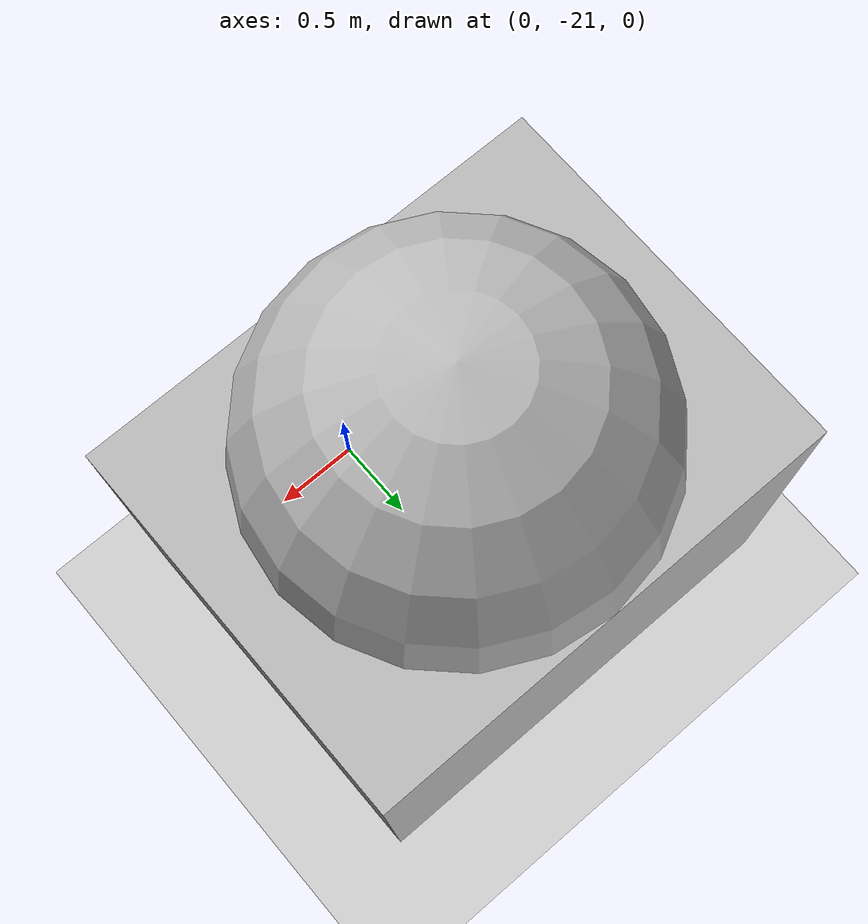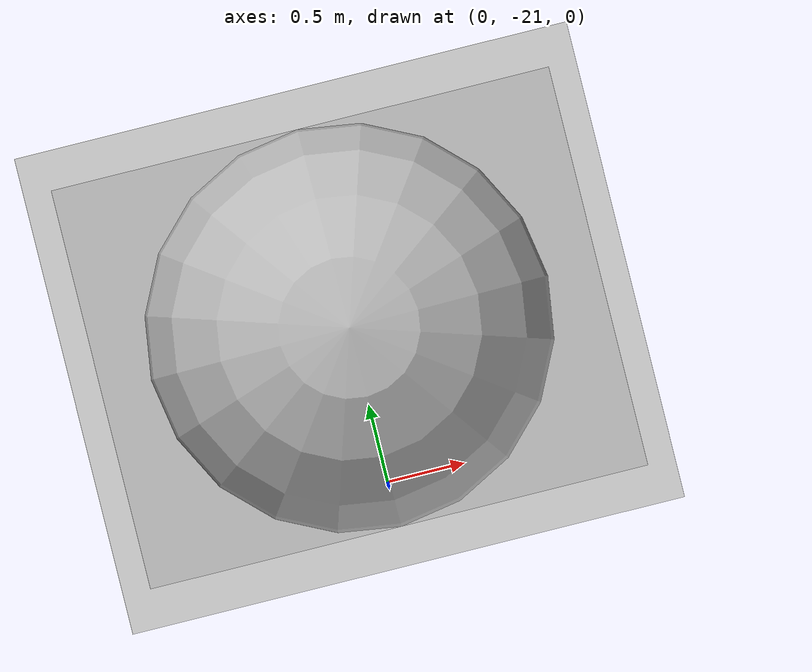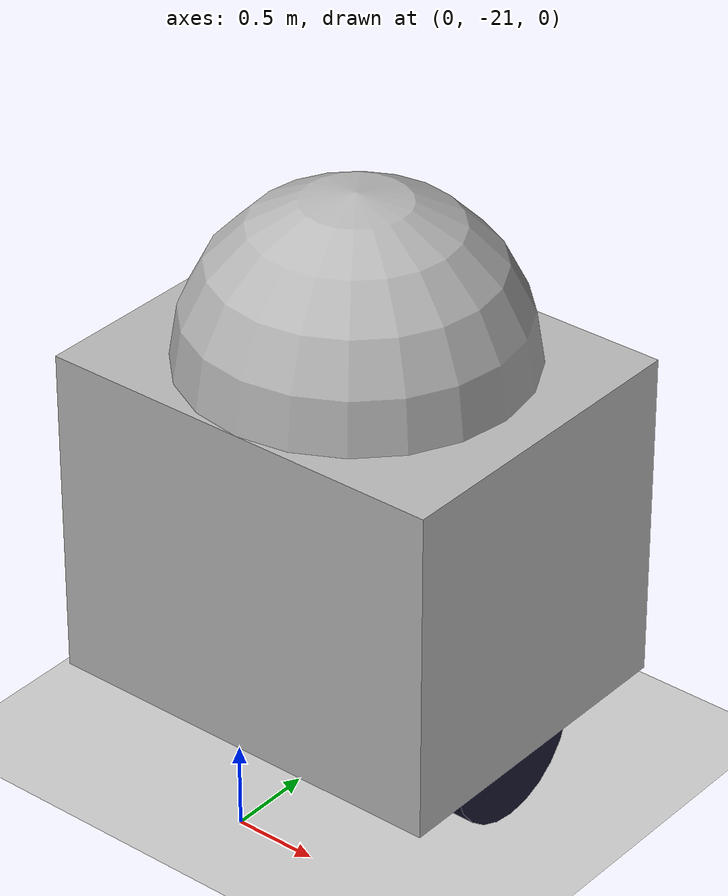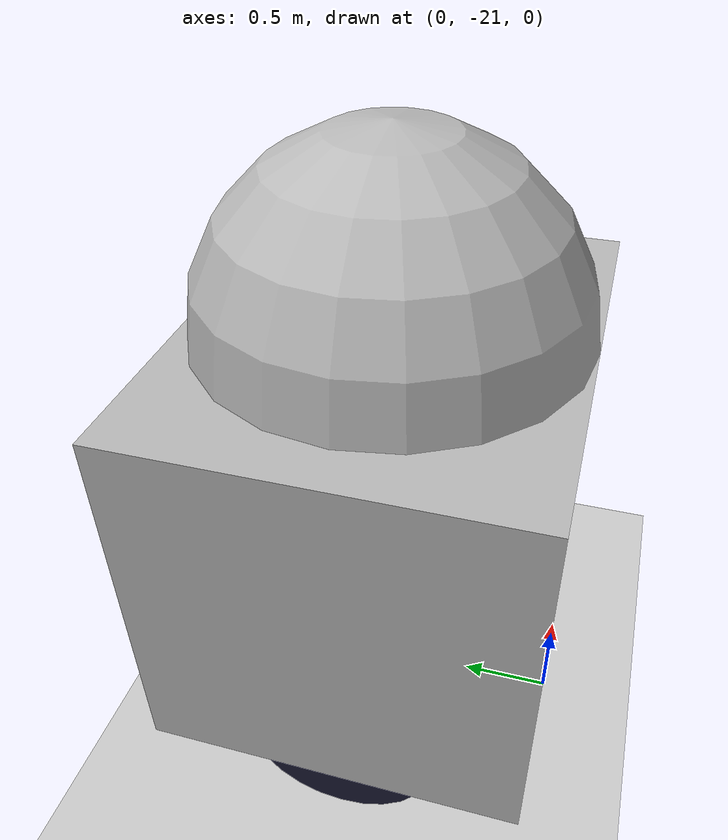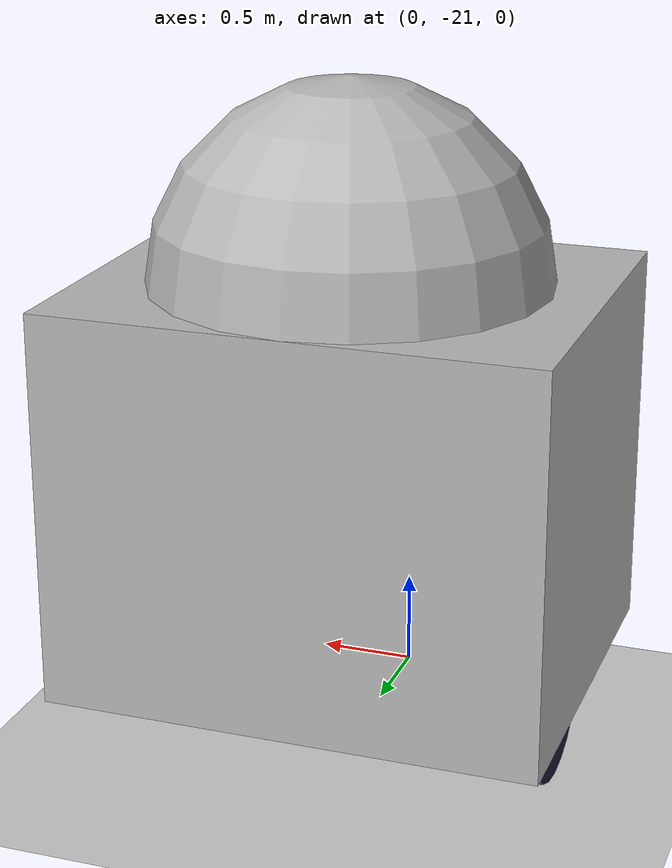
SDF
<sdf version="1.6">
 <world name="default">
  <physics type="ode">
   <ode>
    <solver><type>quick</type><iters>100</iters><sor>1.0</sor></solver>
    <constraints>
     <cfm>0.0</cfm>
     <erp>0.2</erp>
     <contact_max_correcting_vel>0.1</contact_max_correcting_vel>
     <contact_surface_layer>0.0</contact_surface_layer>
    </constraints>
   </ode>
   <real_time_update_rate>400</real_time_update_rate>
   <max_step_size>0.0025</max_step_size>
  </physics>
  <include><uri>model://sun</uri></include>
  <model name="ground_plane">
   <static>true</static>
   <link name="link">
    <collision name="collision">
     <geometry><plane><normal>0 0 1</normal><size>5000 5000</size></plane></geometry>
     <surface><friction><ode><mu>1</mu><mu2>1</mu2></ode></friction></surface>
    </collision>
    <visual name="runway">
     <pose>000 0 0.005 0 0 -1.5707</pose>
     <cast_shadows>false</cast_shadows>
     <geometry><plane><normal>0 0 1</normal><size>1829 45</size></plane></geometry>
     <material>
      <script><uri>file://media/materials/scripts/gazebo.material</uri><name>Gazebo/Runway</name></script>
     </material>
    </visual>
    <visual name="grass">
     <pose>0 0 -0.1 0 0 0</pose>
     <cast_shadows>false</cast_shadows>
     <geometry><plane><normal>0 0 1</normal><size>5000 5000</size></plane></geometry>
     <material>
      <script><uri>file://media/materials/scripts/gazebo.material</uri><name>Gazebo/Grass</name></script>
     </material>
    </visual>
   </link>
  </model>
  <model name="Target"><pose>0 -20 1.5 0 0 0</pose><include><uri>model://MyTarget</uri></include></model>
 </world>
</sdf>

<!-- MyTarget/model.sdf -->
<sdf version="1.7">
  <model name="Color Tutorial Model">
    <static>true</static>
    <link name="robot_link">
      <collision name="body_collision">
        <pose>0 0 0.5 0 -0 0</pose>
        <geometry>
          <box>
            <size>2 2 3</size>
          </box>
        </geometry>
      </collision>
      <visual name="wheel1_visual">
        <pose>-1 0 -1 0 1.57079 0</pose>
        <geometry>
          <cylinder>
            <radius>0.5</radius>
            <length>0.2</length>
          </cylinder>
        </geometry>
        <material> <!-- Wheel material -->
          <ambient>0.1 0.1 0.1 1</ambient>
          <diffuse>0.1 0.1 0.2 1</diffuse>
          <specular>0 0 0 0</specular>
          <emissive>0 0 0 1</emissive>
        </material> <!-- End wheel material -->
      </visual>
      <visual name="wheel2_visual">
        <pose>1 0 -1 0 1.57079 0</pose>
        <geometry>
          <cylinder>
            <radius>0.5</radius>
            <length>0.2</length>
          </cylinder>
        </geometry>
        <material> <!-- Wheel material -->
          <ambient>0.1 0.1 0.1 1</ambient>
          <diffuse>0.1 0.1 0.2 1</diffuse>
          <specular>0 0 0 0</specular>
          <emissive>0 0 0 1</emissive>
        </material> <!-- End wheel material -->
      </visual>
      <visual name="power_led_visual">
        <pose>0.225 0.225 0.25 0 0 0</pose>
        <geometry>
          <sphere>
            <radius>0.003</radius>
          </sphere>
        </geometry>
      </visual>
      <visual name="body_visual">
        <geometry>
          <box>
            <size>2.5 2 2</size>
          </box>
        </geometry>
      <material>
              <script>
                <uri>model://MyTarget/materials/scripts</uri>
                <uri>model://MyTarget/materials/textures</uri>
                <name>BodyTargetTexture</name>
              </script>
      </material>
      </visual>
      <visual name="head_visual">
        <pose>0 0 1 0 0 -2.5</pose>
        <geometry>
          <sphere>
            <radius>1</radius>
          </sphere>
        </geometry>
      <material>
              <script>
                <uri>model://MyTarget/materials/scripts</uri>
                <uri>model://MyTarget/materials/textures</uri>
                <name>BodyTargetTexture</name>
              </script>
      </material>
      </visual>
    </link>
  </model>
</sdf>
